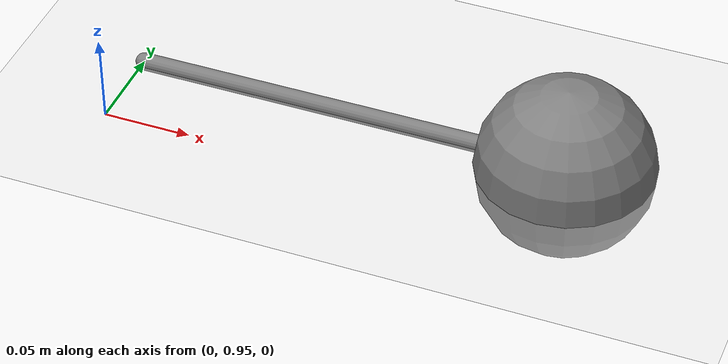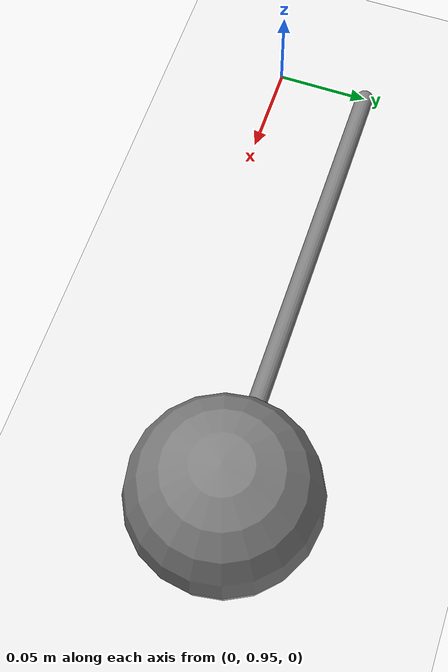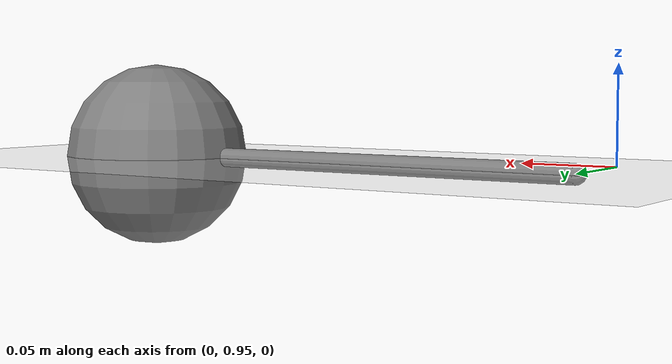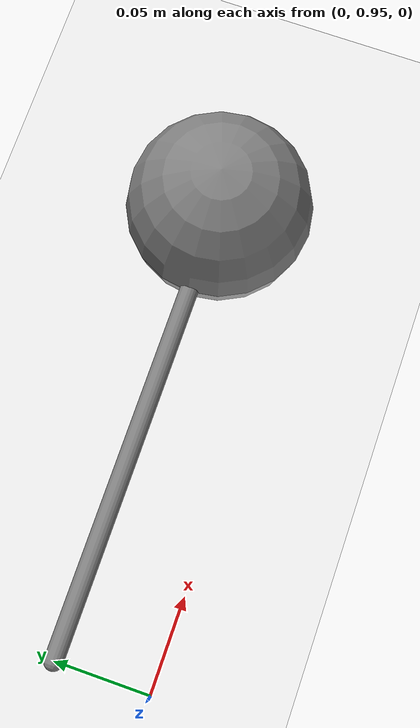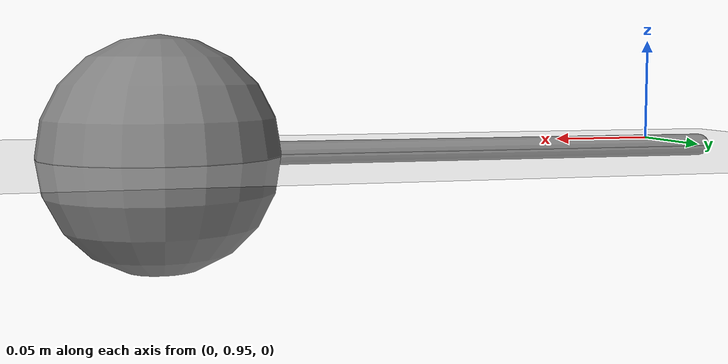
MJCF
<mujoco model="pendulum">
  <compiler angle="radian" coordinate="local" inertiafromgeom="true"/>
  <option gravity="0 -9.81 0" integrator="RK4" timestep="0.01"/>
  <worldbody>
    <light diffuse=".5 .5 .5" pos="0 0 3" dir="0 0 -1"/>
    <geom type="plane" size="5 5 0.1" rgba=".9 .9 .9 1"/>
    <body name="pendulum_link" pos="0 1 0">
      <joint name="hinge_joint" type="hinge" axis="0 0 1" damping="0" frictionloss="0"/>
      <body name="rod" pos="0 0 0">
        <geom type="capsule" size="0.005" fromto="0 0 0 0.2485 0 0" mass="0" contype="0" conaffinity="0"/>
        <body name="bob" pos="0.2485 0 0">
          <geom type="sphere" size="0.05" mass="1.0"/>
        </body>
      </body>
    </body>
  </worldbody>
</mujoco>
